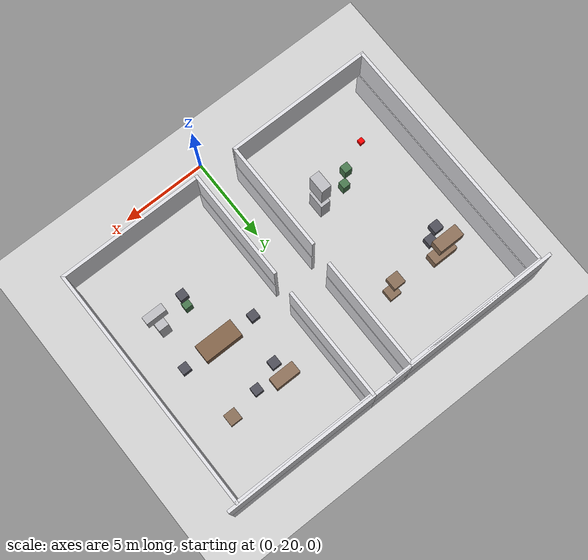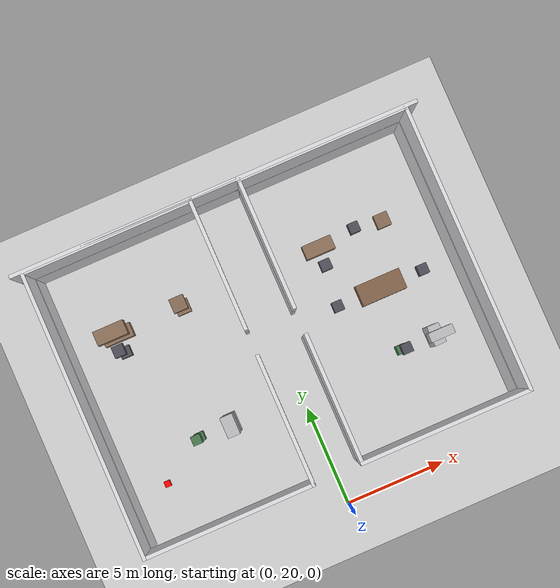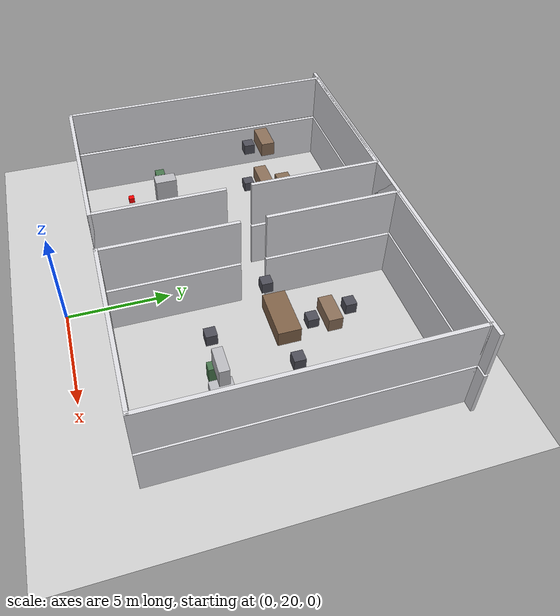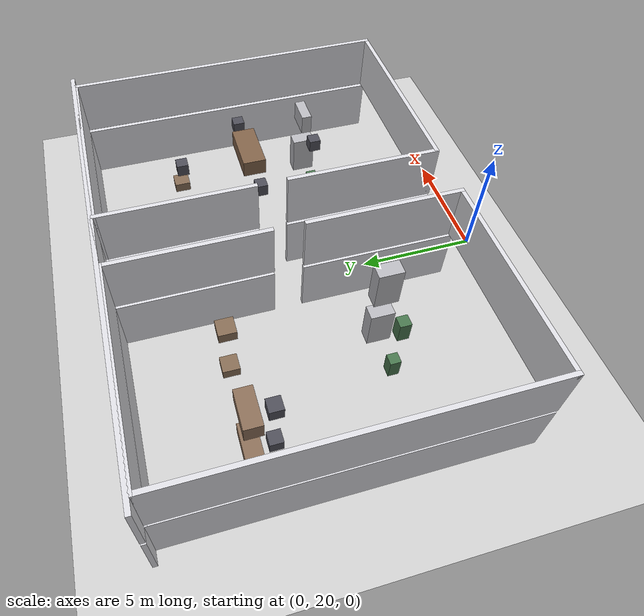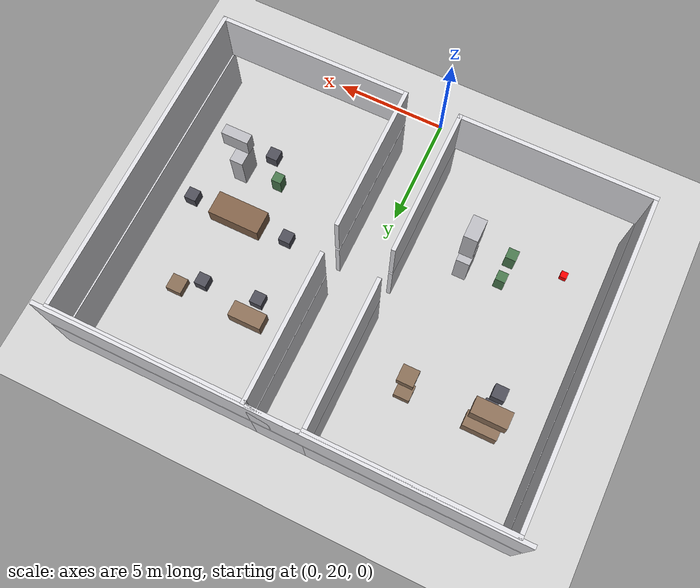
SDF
<sdf version="1.7">
 <world name="generated_world">
  <include><uri>model://sun</uri></include>
  <include><uri>model://ground_plane</uri></include>
  <model name="generated_building">
   <static>true</static>
   <link name="exterior_north_floor_0">
    <pose>0.0000 35.9100 1.2250 0.0000 0.0000 0.0000</pose>
    <collision name="exterior_north_floor_0_collision">
     <geometry><box><size>20.0000 0.1800 2.4500</size></box></geometry>
    </collision>
    <visual name="exterior_north_floor_0_visual">
     <geometry><box><size>20.0000 0.1800 2.4500</size></box></geometry>
     <material><ambient>0.86 0.86 0.88 1</ambient><diffuse>0.86 0.86 0.88 1</diffuse></material>
    </visual>
    <gravity>false</gravity>
   </link>
   <link name="north_end_wall_floor_0">
    <pose>0.0000 35.9100 1.2250 0.0000 0.0000 0.0000</pose>
    <collision name="north_end_wall_floor_0_collision">
     <geometry><box><size>2.2000 0.1800 2.4500</size></box></geometry>
    </collision>
    <visual name="north_end_wall_floor_0_visual">
     <geometry><box><size>2.2000 0.1800 2.4500</size></box></geometry>
     <material><ambient>0.86 0.86 0.88 1</ambient><diffuse>0.86 0.86 0.88 1</diffuse></material>
    </visual>
    <gravity>false</gravity>
   </link>
   <link name="floor_0_room_2_corridor_wall_lower">
    <pose>-1.1900 25.0875 1.2250 0.0000 0.0000 0.0000</pose>
    <collision name="floor_0_room_2_corridor_wall_lower_collision">
     <geometry><box><size>0.1800 6.4150 2.4500</size></box></geometry>
    </collision>
    <visual name="floor_0_room_2_corridor_wall_lower_visual">
     <geometry><box><size>0.1800 6.4150 2.4500</size></box></geometry>
     <material><ambient>0.86 0.86 0.88 1</ambient><diffuse>0.86 0.86 0.88 1</diffuse></material>
    </visual>
    <gravity>false</gravity>
   </link>
   <link name="floor_0_room_2_corridor_wall_upper">
    <pose>-1.1900 32.7025 1.2250 0.0000 0.0000 0.0000</pose>
    <collision name="floor_0_room_2_corridor_wall_upper_collision">
     <geometry><box><size>0.1800 6.4150 2.4500</size></box></geometry>
    </collision>
    <visual name="floor_0_room_2_corridor_wall_upper_visual">
     <geometry><box><size>0.1800 6.4150 2.4500</size></box></geometry>
     <material><ambient>0.86 0.86 0.88 1</ambient><diffuse>0.86 0.86 0.88 1</diffuse></material>
    </visual>
    <gravity>false</gravity>
   </link>
   <link name="floor_0_room_2_west_wall">
    <pose>-9.4100 28.8950 1.2250 0.0000 0.0000 0.0000</pose>
    <collision name="floor_0_room_2_west_wall_collision">
     <geometry><box><size>0.1800 14.0300 2.4500</size></box></geometry>
    </collision>
    <visual name="floor_0_room_2_west_wall_visual">
     <geometry><box><size>0.1800 14.0300 2.4500</size></box></geometry>
     <material><ambient>0.86 0.86 0.88 1</ambient><diffuse>0.86 0.86 0.88 1</diffuse></material>
    </visual>
    <gravity>false</gravity>
   </link>
   <link name="floor_0_room_2_north_wall">
    <pose>-5.3000 35.8200 1.2250 0.0000 0.0000 0.0000</pose>
    <collision name="floor_0_room_2_north_wall_collision">
     <geometry><box><size>8.4000 0.1800 2.4500</size></box></geometry>
    </collision>
    <visual name="floor_0_room_2_north_wall_visual">
     <geometry><box><size>8.4000 0.1800 2.4500</size></box></geometry>
     <material><ambient>0.86 0.86 0.88 1</ambient><diffuse>0.86 0.86 0.88 1</diffuse></material>
    </visual>
    <gravity>false</gravity>
   </link>
   <link name="floor_0_room_3_corridor_wall_lower">
    <pose>1.1900 25.0875 1.2250 0.0000 0.0000 0.0000</pose>
    <collision name="floor_0_room_3_corridor_wall_lower_collision">
     <geometry><box><size>0.1800 6.4150 2.4500</size></box></geometry>
    </collision>
    <visual name="floor_0_room_3_corridor_wall_lower_visual">
     <geometry><box><size>0.1800 6.4150 2.4500</size></box></geometry>
     <material><ambient>0.86 0.86 0.88 1</ambient><diffuse>0.86 0.86 0.88 1</diffuse></material>
    </visual>
    <gravity>false</gravity>
   </link>
   <link name="floor_0_room_3_corridor_wall_upper">
    <pose>1.1900 32.7025 1.2250 0.0000 0.0000 0.0000</pose>
    <collision name="floor_0_room_3_corridor_wall_upper_collision">
     <geometry><box><size>0.1800 6.4150 2.4500</size></box></geometry>
    </collision>
    <visual name="floor_0_room_3_corridor_wall_upper_visual">
     <geometry><box><size>0.1800 6.4150 2.4500</size></box></geometry>
     <material><ambient>0.86 0.86 0.88 1</ambient><diffuse>0.86 0.86 0.88 1</diffuse></material>
    </visual>
    <gravity>false</gravity>
   </link>
   <link name="floor_0_room_3_east_wall">
    <pose>9.4100 28.8950 1.2250 0.0000 0.0000 0.0000</pose>
    <collision name="floor_0_room_3_east_wall_collision">
     <geometry><box><size>0.1800 14.0300 2.4500</size></box></geometry>
    </collision>
    <visual name="floor_0_room_3_east_wall_visual">
     <geometry><box><size>0.1800 14.0300 2.4500</size></box></geometry>
     <material><ambient>0.86 0.86 0.88 1</ambient><diffuse>0.86 0.86 0.88 1</diffuse></material>
    </visual>
    <gravity>false</gravity>
   </link>
   <link name="floor_0_room_3_north_wall">
    <pose>5.3000 35.8200 1.2250 0.0000 0.0000 0.0000</pose>
    <collision name="floor_0_room_3_north_wall_collision">
     <geometry><box><size>8.4000 0.1800 2.4500</size></box></geometry>
    </collision>
    <visual name="floor_0_room_3_north_wall_visual">
     <geometry><box><size>8.4000 0.1800 2.4500</size></box></geometry>
     <material><ambient>0.86 0.86 0.88 1</ambient><diffuse>0.86 0.86 0.88 1</diffuse></material>
    </visual>
    <gravity>false</gravity>
   </link>
   <link name="floor_0_room_2_desk">
    <pose>-7.0000 31.9525 0.4500 0.0000 0.0000 0.0000</pose>
    <collision name="floor_0_room_2_desk_collision">
     <geometry><box><size>1.5000 0.7000 0.7500</size></box></geometry>
    </collision>
    <visual name="floor_0_room_2_desk_visual">
     <geometry><box><size>1.5000 0.7000 0.7500</size></box></geometry>
     <material><ambient>0.54 0.43 0.34 1</ambient><diffuse>0.54 0.43 0.34 1</diffuse></material>
    </visual>
    <gravity>false</gravity>
   </link>
   <link name="floor_0_room_2_chair">
    <pose>-7.0000 31.0525 0.2800 0.0000 0.0000 0.0000</pose>
    <collision name="floor_0_room_2_chair_collision">
     <geometry><box><size>0.5500 0.5500 0.5500</size></box></geometry>
    </collision>
    <visual name="floor_0_room_2_chair_visual">
     <geometry><box><size>0.5500 0.5500 0.5500</size></box></geometry>
     <material><ambient>0.30 0.30 0.34 1</ambient><diffuse>0.30 0.30 0.34 1</diffuse></material>
    </visual>
    <gravity>false</gravity>
   </link>
   <link name="floor_0_room_2_cabinet">
    <pose>-3.6000 25.8375 0.9000 0.0000 0.0000 0.0000</pose>
    <collision name="floor_0_room_2_cabinet_collision">
     <geometry><box><size>0.6000 1.0000 1.8000</size></box></geometry>
    </collision>
    <visual name="floor_0_room_2_cabinet_visual">
     <geometry><box><size>0.6000 1.0000 1.8000</size></box></geometry>
     <material><ambient>0.72 0.72 0.74 1</ambient><diffuse>0.72 0.72 0.74 1</diffuse></material>
    </visual>
    <gravity>false</gravity>
   </link>
   <link name="floor_0_room_2_side_table">
    <pose>-3.6000 31.9525 0.3200 0.0000 0.0000 0.0000</pose>
    <collision name="floor_0_room_2_side_table_collision">
     <geometry><box><size>0.7000 0.7000 0.4500</size></box></geometry>
    </collision>
    <visual name="floor_0_room_2_side_table_visual">
     <geometry><box><size>0.7000 0.7000 0.4500</size></box></geometry>
     <material><ambient>0.52 0.42 0.33 1</ambient><diffuse>0.52 0.42 0.33 1</diffuse></material>
    </visual>
    <gravity>false</gravity>
   </link>
   <link name="floor_0_room_2_planter">
    <pose>-5.3000 25.8375 0.4500 0.0000 0.0000 0.0000</pose>
    <collision name="floor_0_room_2_planter_collision">
     <geometry><box><size>0.4500 0.4500 0.9000</size></box></geometry>
    </collision>
    <visual name="floor_0_room_2_planter_visual">
     <geometry><box><size>0.4500 0.4500 0.9000</size></box></geometry>
     <material><ambient>0.28 0.46 0.30 1</ambient><diffuse>0.28 0.46 0.30 1</diffuse></material>
    </visual>
    <gravity>false</gravity>
   </link>
   <link name="floor_0_room_3_desk">
    <pose>3.6000 31.9525 0.4500 0.0000 0.0000 0.0000</pose>
    <collision name="floor_0_room_3_desk_collision">
     <geometry><box><size>1.5000 0.7000 0.7500</size></box></geometry>
    </collision>
    <visual name="floor_0_room_3_desk_visual">
     <geometry><box><size>1.5000 0.7000 0.7500</size></box></geometry>
     <material><ambient>0.54 0.43 0.34 1</ambient><diffuse>0.54 0.43 0.34 1</diffuse></material>
    </visual>
    <gravity>false</gravity>
   </link>
   <link name="floor_0_room_3_chair">
    <pose>3.6000 31.0525 0.2800 0.0000 0.0000 0.0000</pose>
    <collision name="floor_0_room_3_chair_collision">
     <geometry><box><size>0.5500 0.5500 0.5500</size></box></geometry>
    </collision>
    <visual name="floor_0_room_3_chair_visual">
     <geometry><box><size>0.5500 0.5500 0.5500</size></box></geometry>
     <material><ambient>0.30 0.30 0.34 1</ambient><diffuse>0.30 0.30 0.34 1</diffuse></material>
    </visual>
    <gravity>false</gravity>
   </link>
   <link name="floor_0_room_3_cabinet">
    <pose>7.0000 25.8375 0.9000 0.0000 0.0000 0.0000</pose>
    <collision name="floor_0_room_3_cabinet_collision">
     <geometry><box><size>0.6000 1.0000 1.8000</size></box></geometry>
    </collision>
    <visual name="floor_0_room_3_cabinet_visual">
     <geometry><box><size>0.6000 1.0000 1.8000</size></box></geometry>
     <material><ambient>0.72 0.72 0.74 1</ambient><diffuse>0.72 0.72 0.74 1</diffuse></material>
    </visual>
    <gravity>false</gravity>
   </link>
   <link name="floor_0_room_3_side_table">
    <pose>7.0000 31.9525 0.3200 0.0000 0.0000 0.0000</pose>
    <collision name="floor_0_room_3_side_table_collision">
     <geometry><box><size>0.7000 0.7000 0.4500</size></box></geometry>
    </collision>
    <visual name="floor_0_room_3_side_table_visual">
     <geometry><box><size>0.7000 0.7000 0.4500</size></box></geometry>
     <material><ambient>0.52 0.42 0.33 1</ambient><diffuse>0.52 0.42 0.33 1</diffuse></material>
    </visual>
    <gravity>false</gravity>
   </link>
   <link name="floor_0_room_3_planter">
    <pose>5.3000 25.8375 0.4500 0.0000 0.0000 0.0000</pose>
    <collision name="floor_0_room_3_planter_collision">
     <geometry><box><size>0.4500 0.4500 0.9000</size></box></geometry>
    </collision>
    <visual name="floor_0_room_3_planter_visual">
     <geometry><box><size>0.4500 0.4500 0.9000</size></box></geometry>
     <material><ambient>0.28 0.46 0.30 1</ambient><diffuse>0.28 0.46 0.30 1</diffuse></material>
    </visual>
    <gravity>false</gravity>
   </link>
   <link name="exterior_north_floor_1">
    <pose>0.0000 35.9100 3.8250 0.0000 0.0000 0.0000</pose>
    <collision name="exterior_north_floor_1_collision">
     <geometry><box><size>20.0000 0.1800 2.4500</size></box></geometry>
    </collision>
    <visual name="exterior_north_floor_1_visual">
     <geometry><box><size>20.0000 0.1800 2.4500</size></box></geometry>
     <material><ambient>0.86 0.86 0.88 1</ambient><diffuse>0.86 0.86 0.88 1</diffuse></material>
    </visual>
    <gravity>false</gravity>
   </link>
   <link name="north_end_wall_floor_1">
    <pose>0.0000 35.9100 3.8250 0.0000 0.0000 0.0000</pose>
    <collision name="north_end_wall_floor_1_collision">
     <geometry><box><size>2.2000 0.1800 2.4500</size></box></geometry>
    </collision>
    <visual name="north_end_wall_floor_1_visual">
     <geometry><box><size>2.2000 0.1800 2.4500</size></box></geometry>
     <material><ambient>0.86 0.86 0.88 1</ambient><diffuse>0.86 0.86 0.88 1</diffuse></material>
    </visual>
    <gravity>false</gravity>
   </link>
   <link name="floor_1_room_2_corridor_wall_lower">
    <pose>-1.1900 25.0875 3.8250 0.0000 0.0000 0.0000</pose>
    <collision name="floor_1_room_2_corridor_wall_lower_collision">
     <geometry><box><size>0.1800 6.4150 2.4500</size></box></geometry>
    </collision>
    <visual name="floor_1_room_2_corridor_wall_lower_visual">
     <geometry><box><size>0.1800 6.4150 2.4500</size></box></geometry>
     <material><ambient>0.86 0.86 0.88 1</ambient><diffuse>0.86 0.86 0.88 1</diffuse></material>
    </visual>
    <gravity>false</gravity>
   </link>
   <link name="floor_1_room_2_corridor_wall_upper">
    <pose>-1.1900 32.7025 3.8250 0.0000 0.0000 0.0000</pose>
    <collision name="floor_1_room_2_corridor_wall_upper_collision">
     <geometry><box><size>0.1800 6.4150 2.4500</size></box></geometry>
    </collision>
    <visual name="floor_1_room_2_corridor_wall_upper_visual">
     <geometry><box><size>0.1800 6.4150 2.4500</size></box></geometry>
     <material><ambient>0.86 0.86 0.88 1</ambient><diffuse>0.86 0.86 0.88 1</diffuse></material>
    </visual>
    <gravity>false</gravity>
   </link>
   <link name="floor_1_room_2_west_wall">
    <pose>-9.4100 28.8950 3.8250 0.0000 0.0000 0.0000</pose>
    <collision name="floor_1_room_2_west_wall_collision">
     <geometry><box><size>0.1800 14.0300 2.4500</size></box></geometry>
    </collision>
    <visual name="floor_1_room_2_west_wall_visual">
     <geometry><box><size>0.1800 14.0300 2.4500</size></box></geometry>
     <material><ambient>0.86 0.86 0.88 1</ambient><diffuse>0.86 0.86 0.88 1</diffuse></material>
    </visual>
    <gravity>false</gravity>
   </link>
   <link name="floor_1_room_2_south_wall">
    <pose>-5.3000 21.9700 3.8250 0.0000 0.0000 0.0000</pose>
    <collision name="floor_1_room_2_south_wall_collision">
     <geometry><box><size>8.4000 0.1800 2.4500</size></box></geometry>
    </collision>
    <visual name="floor_1_room_2_south_wall_visual">
     <geometry><box><size>8.4000 0.1800 2.4500</size></box></geometry>
     <material><ambient>0.86 0.86 0.88 1</ambient><diffuse>0.86 0.86 0.88 1</diffuse></material>
    </visual>
    <gravity>false</gravity>
   </link>
   <link name="floor_1_room_2_north_wall">
    <pose>-5.3000 35.8200 3.8250 0.0000 0.0000 0.0000</pose>
    <collision name="floor_1_room_2_north_wall_collision">
     <geometry><box><size>8.4000 0.1800 2.4500</size></box></geometry>
    </collision>
    <visual name="floor_1_room_2_north_wall_visual">
     <geometry><box><size>8.4000 0.1800 2.4500</size></box></geometry>
     <material><ambient>0.86 0.86 0.88 1</ambient><diffuse>0.86 0.86 0.88 1</diffuse></material>
    </visual>
    <gravity>false</gravity>
   </link>
   <link name="floor_1_room_3_corridor_wall_lower">
    <pose>1.1900 25.0875 3.8250 0.0000 0.0000 0.0000</pose>
    <collision name="floor_1_room_3_corridor_wall_lower_collision">
     <geometry><box><size>0.1800 6.4150 2.4500</size></box></geometry>
    </collision>
    <visual name="floor_1_room_3_corridor_wall_lower_visual">
     <geometry><box><size>0.1800 6.4150 2.4500</size></box></geometry>
     <material><ambient>0.86 0.86 0.88 1</ambient><diffuse>0.86 0.86 0.88 1</diffuse></material>
    </visual>
    <gravity>false</gravity>
   </link>
   <link name="floor_1_room_3_corridor_wall_upper">
    <pose>1.1900 32.7025 3.8250 0.0000 0.0000 0.0000</pose>
    <collision name="floor_1_room_3_corridor_wall_upper_collision">
     <geometry><box><size>0.1800 6.4150 2.4500</size></box></geometry>
    </collision>
    <visual name="floor_1_room_3_corridor_wall_upper_visual">
     <geometry><box><size>0.1800 6.4150 2.4500</size></box></geometry>
     <material><ambient>0.86 0.86 0.88 1</ambient><diffuse>0.86 0.86 0.88 1</diffuse></material>
    </visual>
    <gravity>false</gravity>
   </link>
   <link name="floor_1_room_3_east_wall">
    <pose>9.4100 28.8950 3.8250 0.0000 0.0000 0.0000</pose>
    <collision name="floor_1_room_3_east_wall_collision">
     <geometry><box><size>0.1800 14.0300 2.4500</size></box></geometry>
    </collision>
    <visual name="floor_1_room_3_east_wall_visual">
     <geometry><box><size>0.1800 14.0300 2.4500</size></box></geometry>
     <material><ambient>0.86 0.86 0.88 1</ambient><diffuse>0.86 0.86 0.88 1</diffuse></material>
    </visual>
    <gravity>false</gravity>
   </link>
   <link name="floor_1_room_3_south_wall">
    <pose>5.3000 21.9700 3.8250 0.0000 0.0000 0.0000</pose>
    <collision name="floor_1_room_3_south_wall_collision">
     <geometry><box><size>8.4000 0.1800 2.4500</size></box></geometry>
    </collision>
    <visual name="floor_1_room_3_south_wall_visual">
     <geometry><box><size>8.4000 0.1800 2.4500</size></box></geometry>
     <material><ambient>0.86 0.86 0.88 1</ambient><diffuse>0.86 0.86 0.88 1</diffuse></material>
    </visual>
    <gravity>false</gravity>
   </link>
   <link name="floor_1_room_3_north_wall">
    <pose>5.3000 35.8200 3.8250 0.0000 0.0000 0.0000</pose>
    <collision name="floor_1_room_3_north_wall_collision">
     <geometry><box><size>8.4000 0.1800 2.4500</size></box></geometry>
    </collision>
    <visual name="floor_1_room_3_north_wall_visual">
     <geometry><box><size>8.4000 0.1800 2.4500</size></box></geometry>
     <material><ambient>0.86 0.86 0.88 1</ambient><diffuse>0.86 0.86 0.88 1</diffuse></material>
    </visual>
    <gravity>false</gravity>
   </link>
   <link name="floor_1_room_2_desk">
    <pose>-7.0000 31.9525 3.0500 0.0000 0.0000 0.0000</pose>
    <collision name="floor_1_room_2_desk_collision">
     <geometry><box><size>1.5000 0.7000 0.7500</size></box></geometry>
    </collision>
    <visual name="floor_1_room_2_desk_visual">
     <geometry><box><size>1.5000 0.7000 0.7500</size></box></geometry>
     <material><ambient>0.54 0.43 0.34 1</ambient><diffuse>0.54 0.43 0.34 1</diffuse></material>
    </visual>
    <gravity>false</gravity>
   </link>
   <link name="floor_1_room_2_chair">
    <pose>-7.0000 31.0525 2.8800 0.0000 0.0000 0.0000</pose>
    <collision name="floor_1_room_2_chair_collision">
     <geometry><box><size>0.5500 0.5500 0.5500</size></box></geometry>
    </collision>
    <visual name="floor_1_room_2_chair_visual">
     <geometry><box><size>0.5500 0.5500 0.5500</size></box></geometry>
     <material><ambient>0.30 0.30 0.34 1</ambient><diffuse>0.30 0.30 0.34 1</diffuse></material>
    </visual>
    <gravity>false</gravity>
   </link>
   <link name="floor_1_room_2_cabinet">
    <pose>-3.6000 25.8375 3.5000 0.0000 0.0000 0.0000</pose>
    <collision name="floor_1_room_2_cabinet_collision">
     <geometry><box><size>0.6000 1.0000 1.8000</size></box></geometry>
    </collision>
    <visual name="floor_1_room_2_cabinet_visual">
     <geometry><box><size>0.6000 1.0000 1.8000</size></box></geometry>
     <material><ambient>0.72 0.72 0.74 1</ambient><diffuse>0.72 0.72 0.74 1</diffuse></material>
    </visual>
    <gravity>false</gravity>
   </link>
   <link name="floor_1_room_2_side_table">
    <pose>-3.6000 31.9525 2.9200 0.0000 0.0000 0.0000</pose>
    <collision name="floor_1_room_2_side_table_collision">
     <geometry><box><size>0.7000 0.7000 0.4500</size></box></geometry>
    </collision>
    <visual name="floor_1_room_2_side_table_visual">
     <geometry><box><size>0.7000 0.7000 0.4500</size></box></geometry>
     <material><ambient>0.52 0.42 0.33 1</ambient><diffuse>0.52 0.42 0.33 1</diffuse></material>
    </visual>
    <gravity>false</gravity>
   </link>
   <link name="floor_1_room_2_planter">
    <pose>-5.3000 25.8375 3.0500 0.0000 0.0000 0.0000</pose>
    <collision name="floor_1_room_2_planter_collision">
     <geometry><box><size>0.4500 0.4500 0.9000</size></box></geometry>
    </collision>
    <visual name="floor_1_room_2_planter_visual">
     <geometry><box><size>0.4500 0.4500 0.9000</size></box></geometry>
     <material><ambient>0.28 0.46 0.30 1</ambient><diffuse>0.28 0.46 0.30 1</diffuse></material>
    </visual>
    <gravity>false</gravity>
   </link>
   <link name="floor_1_room_3_table">
    <pose>5.3000 28.8950 3.0500 0.0000 0.0000 0.0000</pose>
    <collision name="floor_1_room_3_table_collision">
     <geometry><box><size>2.2000 1.0000 0.7500</size></box></geometry>
    </collision>
    <visual name="floor_1_room_3_table_visual">
     <geometry><box><size>2.2000 1.0000 0.7500</size></box></geometry>
     <material><ambient>0.50 0.38 0.28 1</ambient><diffuse>0.50 0.38 0.28 1</diffuse></material>
    </visual>
    <gravity>false</gravity>
   </link>
   <link name="floor_1_room_3_chair_north">
    <pose>5.3000 31.9525 2.8800 0.0000 0.0000 0.0000</pose>
    <collision name="floor_1_room_3_chair_north_collision">
     <geometry><box><size>0.5000 0.5000 0.5500</size></box></geometry>
    </collision>
    <visual name="floor_1_room_3_chair_north_visual">
     <geometry><box><size>0.5000 0.5000 0.5500</size></box></geometry>
     <material><ambient>0.30 0.30 0.34 1</ambient><diffuse>0.30 0.30 0.34 1</diffuse></material>
    </visual>
    <gravity>false</gravity>
   </link>
   <link name="floor_1_room_3_chair_south">
    <pose>5.3000 25.8375 2.8800 0.0000 0.0000 0.0000</pose>
    <collision name="floor_1_room_3_chair_south_collision">
     <geometry><box><size>0.5000 0.5000 0.5500</size></box></geometry>
    </collision>
    <visual name="floor_1_room_3_chair_south_visual">
     <geometry><box><size>0.5000 0.5000 0.5500</size></box></geometry>
     <material><ambient>0.30 0.30 0.34 1</ambient><diffuse>0.30 0.30 0.34 1</diffuse></material>
    </visual>
    <gravity>false</gravity>
   </link>
   <link name="floor_1_room_3_chair_west">
    <pose>3.1500 28.8950 2.8800 0.0000 0.0000 1.5700</pose>
    <collision name="floor_1_room_3_chair_west_collision">
     <geometry><box><size>0.5000 0.5000 0.5500</size></box></geometry>
    </collision>
    <visual name="floor_1_room_3_chair_west_visual">
     <geometry><box><size>0.5000 0.5000 0.5500</size></box></geometry>
     <material><ambient>0.30 0.30 0.34 1</ambient><diffuse>0.30 0.30 0.34 1</diffuse></material>
    </visual>
    <gravity>false</gravity>
   </link>
   <link name="floor_1_room_3_chair_east">
    <pose>7.4500 28.8950 2.8800 0.0000 0.0000 1.5700</pose>
    <collision name="floor_1_room_3_chair_east_collision">
     <geometry><box><size>0.5000 0.5000 0.5500</size></box></geometry>
    </collision>
    <visual name="floor_1_room_3_chair_east_visual">
     <geometry><box><size>0.5000 0.5000 0.5500</size></box></geometry>
     <material><ambient>0.30 0.30 0.34 1</ambient><diffuse>0.30 0.30 0.34 1</diffuse></material>
    </visual>
    <gravity>false</gravity>
   </link>
   <link name="floor_1_room_3_credenza">
    <pose>7.0000 25.8375 3.0500 0.0000 0.0000 0.0000</pose>
    <collision name="floor_1_room_3_credenza_collision">
     <geometry><box><size>1.2000 0.4500 0.9000</size></box></geometry>
    </collision>
    <visual name="floor_1_room_3_credenza_visual">
     <geometry><box><size>1.2000 0.4500 0.9000</size></box></geometry>
     <material><ambient>0.72 0.72 0.74 1</ambient><diffuse>0.72 0.72 0.74 1</diffuse></material>
    </visual>
    <gravity>false</gravity>
   </link>
  </model>
  <model name="distractor_red_box_00">
   <static>true</static>
   <pose>-7.671760 24.372661 0.150000 0.000000 0.000000 0.000000</pose>
   <link name="link">
    <collision name="collision">
     <geometry><box><size>0.300000 0.300000 0.300000</size></box></geometry>
    </collision>
    <visual name="visual">
     <geometry><box><size>0.300000 0.300000 0.300000</size></box></geometry>
     <material><ambient>1.0 0.0 0.0 1.0</ambient><diffuse>1.0 0.0 0.0 1.0</diffuse></material>
    </visual>
   </link>
  </model>
 </world>
</sdf>
